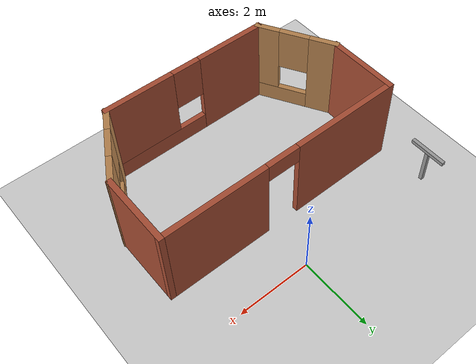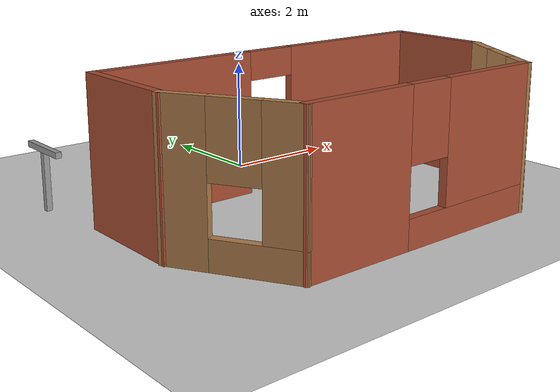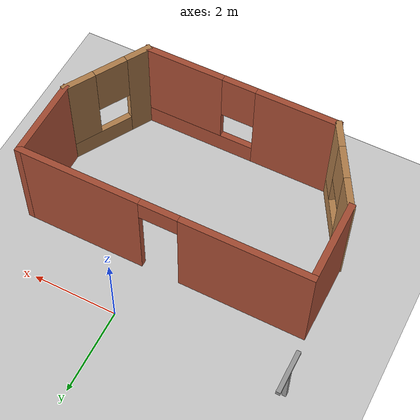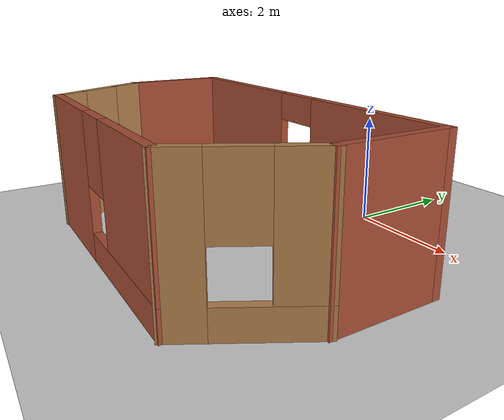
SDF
<sdf version="1.6">
 <world name="default">
  <model name="ground_plane">
   <static>1</static>
   <link name="link">
    <collision name="collision">
     <geometry><plane><normal>0 0 1</normal><size>100 100</size></plane></geometry>
     <surface>
      <contact><collide_bitmask>65535</collide_bitmask></contact>
      <friction><ode><mu>100</mu><mu2>50</mu2></ode></friction>
     </surface>
    </collision>
    <visual name="visual">
     <cast_shadows>0</cast_shadows>
     <geometry><plane><normal>0 0 1</normal><size>100 100</size></plane></geometry>
     <material>
      <script><uri>file://media/materials/scripts/gazebo.material</uri><name>Gazebo/Grey</name></script>
     </material>
    </visual>
   </link>
  </model>
  <model name="house">
   <pose>-0.44 -3.22805 0 0 -0 0</pose>
   <link name="Wall_0">
    <collision name="Wall_0_Collision">
     <geometry><box><size>2 0.15 2.5</size></box></geometry>
     <pose>0 0 1.25 0 -0 0</pose>
    </collision>
    <visual name="Wall_0_Visual">
     <pose>0 0 1.25 0 -0 0</pose>
     <geometry><box><size>2 0.15 2.5</size></box></geometry>
     <material>
      <script><uri>file://media/materials/scripts/gazebo.material</uri><name>Gazebo/Bricks</name></script>
      <ambient>0.435294 0.796078 0.67451 1</ambient>
     </material>
     <meta><layer>0</layer></meta>
    </visual>
    <pose>-3.35 0.923052 0 0 -0 1.5708</pose>
   </link>
   <link name="Wall_10">
    <pose>0 -1.8206 0 0 -0 0</pose>
    <visual name="Wall_10_Visual_0">
     <pose>-1.37779 0 1.25 0 -0 0</pose>
     <geometry><box><size>1.99442 0.15 2.5</size></box></geometry>
     <material>
      <script><uri>file://media/materials/scripts/gazebo.material</uri><name>Gazebo/Bricks</name></script>
      <ambient>0.435294 0.796078 0.67451 1</ambient>
     </material>
     <meta><layer>0</layer></meta>
    </visual>
    <collision name="Wall_10_Collision_0">
     <geometry><box><size>1.99442 0.15 2.5</size></box></geometry>
     <pose>-1.37779 0 1.25 0 -0 0</pose>
    </collision>
    <visual name="Wall_10_Visual_1">
     <pose>0.99721 0 0.25 0 -0 0</pose>
     <geometry><box><size>2.75558 0.15 0.5</size></box></geometry>
     <material>
      <script><uri>file://media/materials/scripts/gazebo.material</uri><name>Gazebo/Bricks</name></script>
      <ambient>0.435294 0.796078 0.67451 1</ambient>
     </material>
     <meta><layer>0</layer></meta>
    </visual>
    <collision name="Wall_10_Collision_1">
     <geometry><box><size>2.75558 0.15 0.5</size></box></geometry>
     <pose>0.99721 0 0.25 0 -0 0</pose>
    </collision>
    <visual name="Wall_10_Visual_2">
     <pose>1.39721 0 1.5 0 -0 0</pose>
     <geometry><box><size>1.95558 0.15 2</size></box></geometry>
     <material>
      <script><uri>file://media/materials/scripts/gazebo.material</uri><name>Gazebo/Bricks</name></script>
      <ambient>0.435294 0.796078 0.67451 1</ambient>
     </material>
     <meta><layer>0</layer></meta>
    </visual>
    <collision name="Wall_10_Collision_2">
     <geometry><box><size>1.95558 0.15 2</size></box></geometry>
     <pose>1.39721 0 1.5 0 -0 0</pose>
    </collision>
    <visual name="Wall_10_Visual_3">
     <pose>0.019419 0 1.9 0 -0 0</pose>
     <geometry><box><size>0.8 0.15 1.2</size></box></geometry>
     <material>
      <script><uri>file://media/materials/scripts/gazebo.material</uri><name>Gazebo/Bricks</name></script>
      <ambient>0.435294 0.796078 0.67451 1</ambient>
     </material>
     <meta><layer>0</layer></meta>
    </visual>
    <collision name="Wall_10_Collision_3">
     <geometry><box><size>0.8 0.15 1.2</size></box></geometry>
     <pose>0.019419 0 1.9 0 -0 0</pose>
    </collision>
   </link>
   <link name="Wall_11">
    <pose>2.825 -0.911274 0 0 -0 1.0472</pose>
    <visual name="Wall_11_Visual_0">
     <pose>-0.798385 0 1.25 0 -0 0</pose>
     <geometry><box><size>0.65323 0.15 2.5</size></box></geometry>
     <material>
      <script><uri>file://media/materials/scripts/gazebo.material</uri><name>Gazebo/Wood</name></script>
      <ambient>1 1 1 1</ambient>
     </material>
     <meta><layer>0</layer></meta>
    </visual>
    <collision name="Wall_11_Collision_0">
     <geometry><box><size>0.65323 0.15 2.5</size></box></geometry>
     <pose>-0.798385 0 1.25 0 -0 0</pose>
    </collision>
    <visual name="Wall_11_Visual_1">
     <pose>0.326615 0 0.25 0 -0 0</pose>
     <geometry><box><size>1.59677 0.15 0.5</size></box></geometry>
     <material>
      <script><uri>file://media/materials/scripts/gazebo.material</uri><name>Gazebo/Wood</name></script>
      <ambient>1 1 1 1</ambient>
     </material>
     <meta><layer>0</layer></meta>
    </visual>
    <collision name="Wall_11_Collision_1">
     <geometry><box><size>1.59677 0.15 0.5</size></box></geometry>
     <pose>0.326615 0 0.25 0 -0 0</pose>
    </collision>
    <visual name="Wall_11_Visual_2">
     <pose>0.726615 0 1.5 0 -0 0</pose>
     <geometry><box><size>0.79677 0.15 2</size></box></geometry>
     <material>
      <script><uri>file://media/materials/scripts/gazebo.material</uri><name>Gazebo/Wood</name></script>
      <ambient>1 1 1 1</ambient>
     </material>
     <meta><layer>0</layer></meta>
    </visual>
    <collision name="Wall_11_Collision_2">
     <geometry><box><size>0.79677 0.15 2</size></box></geometry>
     <pose>0.726615 0 1.5 0 -0 0</pose>
    </collision>
    <visual name="Wall_11_Visual_3">
     <pose>-0.07177 0 1.9 0 -0 0</pose>
     <geometry><box><size>0.8 0.15 1.2</size></box></geometry>
     <material>
      <script><uri>file://media/materials/scripts/gazebo.material</uri><name>Gazebo/Wood</name></script>
      <ambient>1 1 1 1</ambient>
     </material>
     <meta><layer>0</layer></meta>
    </visual>
    <collision name="Wall_11_Collision_3">
     <geometry><box><size>0.8 0.15 1.2</size></box></geometry>
     <pose>-0.07177 0 1.9 0 -0 0</pose>
    </collision>
   </link>
   <link name="Wall_12">
    <collision name="Wall_12_Collision">
     <geometry><box><size>2 0.15 2.5</size></box></geometry>
     <pose>0 0 1.25 0 -0 0</pose>
    </collision>
    <visual name="Wall_12_Visual">
     <pose>0 0 1.25 0 -0 0</pose>
     <geometry><box><size>2 0.15 2.5</size></box></geometry>
     <material>
      <script><uri>file://media/materials/scripts/gazebo.material</uri><name>Gazebo/Bricks</name></script>
      <ambient>0.435294 0.796078 0.67451 1</ambient>
     </material>
     <meta><layer>0</layer></meta>
    </visual>
    <pose>3.35 0.923052 0 0 -0 1.5708</pose>
   </link>
   <link name="Wall_13">
    <pose>0 1.84805 0 0 -0 3.14159</pose>
    <visual name="Wall_13_Visual_0">
     <pose>-1.95871 0 1.25 0 -0 0</pose>
     <geometry><box><size>2.93258 0.15 2.5</size></box></geometry>
     <material>
      <script><uri>file://media/materials/scripts/gazebo.material</uri><name>Gazebo/Bricks</name></script>
      <ambient>1 1 1 1</ambient>
     </material>
     <meta><layer>0</layer></meta>
    </visual>
    <collision name="Wall_13_Collision_0">
     <geometry><box><size>2.93258 0.15 2.5</size></box></geometry>
     <pose>-1.95871 0 1.25 0 -0 0</pose>
    </collision>
    <visual name="Wall_13_Visual_1">
     <pose>1.91629 0 1.25 0 -0 0</pose>
     <geometry><box><size>3.01742 0.15 2.5</size></box></geometry>
     <material>
      <script><uri>file://media/materials/scripts/gazebo.material</uri><name>Gazebo/Bricks</name></script>
      <ambient>1 1 1 1</ambient>
     </material>
     <meta><layer>0</layer></meta>
    </visual>
    <collision name="Wall_13_Collision_1">
     <geometry><box><size>3.01742 0.15 2.5</size></box></geometry>
     <pose>1.91629 0 1.25 0 -0 0</pose>
    </collision>
    <visual name="Wall_13_Visual_2">
     <pose>-0.042419 0 2.25 0 -0 0</pose>
     <geometry><box><size>0.9 0.15 0.5</size></box></geometry>
     <material>
      <script><uri>file://media/materials/scripts/gazebo.material</uri><name>Gazebo/Bricks</name></script>
      <ambient>1 1 1 1</ambient>
     </material>
     <meta><layer>0</layer></meta>
    </visual>
    <collision name="Wall_13_Collision_2">
     <geometry><box><size>0.9 0.15 0.5</size></box></geometry>
     <pose>-0.042419 0 2.25 0 -0 0</pose>
    </collision>
   </link>
   <link name="Wall_9">
    <pose>-2.825 -0.911274 0 0 0 -1.0472</pose>
    <visual name="Wall_9_Visual_0">
     <pose>-0.736824 0 1.25 0 -0 0</pose>
     <geometry><box><size>0.776352 0.15 2.5</size></box></geometry>
     <material>
      <script><uri>file://media/materials/scripts/gazebo.material</uri><name>Gazebo/Wood</name></script>
      <ambient>1 1 1 1</ambient>
     </material>
     <meta><layer>0</layer></meta>
    </visual>
    <collision name="Wall_9_Collision_0">
     <geometry><box><size>0.776352 0.15 2.5</size></box></geometry>
     <pose>-0.736824 0 1.25 0 -0 0</pose>
    </collision>
    <visual name="Wall_9_Visual_1">
     <pose>0.388176 0 0.25 0 -0 0</pose>
     <geometry><box><size>1.47365 0.15 0.5</size></box></geometry>
     <material>
      <script><uri>file://media/materials/scripts/gazebo.material</uri><name>Gazebo/Wood</name></script>
      <ambient>1 1 1 1</ambient>
     </material>
     <meta><layer>0</layer></meta>
    </visual>
    <collision name="Wall_9_Collision_1">
     <geometry><box><size>1.47365 0.15 0.5</size></box></geometry>
     <pose>0.388176 0 0.25 0 -0 0</pose>
    </collision>
    <visual name="Wall_9_Visual_2">
     <pose>0.788176 0 1.5 0 -0 0</pose>
     <geometry><box><size>0.673648 0.15 2</size></box></geometry>
     <material>
      <script><uri>file://media/materials/scripts/gazebo.material</uri><name>Gazebo/Wood</name></script>
      <ambient>1 1 1 1</ambient>
     </material>
     <meta><layer>0</layer></meta>
    </visual>
    <collision name="Wall_9_Collision_2">
     <geometry><box><size>0.673648 0.15 2</size></box></geometry>
     <pose>0.788176 0 1.5 0 -0 0</pose>
    </collision>
    <visual name="Wall_9_Visual_3">
     <pose>0.051352 0 1.9 0 -0 0</pose>
     <geometry><box><size>0.8 0.15 1.2</size></box></geometry>
     <material>
      <script><uri>file://media/materials/scripts/gazebo.material</uri><name>Gazebo/Wood</name></script>
      <ambient>1 1 1 1</ambient>
     </material>
     <meta><layer>0</layer></meta>
    </visual>
    <collision name="Wall_9_Collision_3">
     <geometry><box><size>0.8 0.15 1.2</size></box></geometry>
     <pose>0.051352 0 1.9 0 -0 0</pose>
    </collision>
   </link>
   <static>1</static>
  </model>
  <model name="anotherrone_clone">
   <link name="link_0_clone">
    <pose>1.00397 -1.20326 1.05 1.57079 -0 0</pose>
    <inertial>
     <mass>1</mass>
     <inertia>
      <ixx>0.166667</ixx>
      <ixy>0</ixy>
      <ixz>0</ixz>
      <iyy>0.166667</iyy>
      <iyz>0</iyz>
      <izz>0.166667</izz>
     </inertia>
    </inertial>
    <visual name="visual">
     <geometry><box><size>0.1 0.1 1</size></box></geometry>
     <material>
      <lighting>1</lighting>
      <script><uri>file://media/materials/scripts/gazebo.material</uri><name>Gazebo/Grey</name></script>
      <shader type="pixel"><normal_map>__default__</normal_map></shader>
      <ambient>0.3 0.3 0.3 1</ambient>
      <diffuse>0.7 0.7 0.7 1</diffuse>
      <specular>0.01 0.01 0.01 1</specular>
      <emissive>0 0 0 1</emissive>
     </material>
    </visual>
    <collision name="collision">
     <geometry><box><size>0.1 0.1 1</size></box></geometry>
     <surface>
      <friction>
       <ode><mu>1</mu><mu2>1</mu2><fdir1>0 0 0</fdir1><slip1>0</slip1><slip2>0</slip2></ode>
       <torsional>
        <coefficient>1</coefficient>
        <patch_radius>0</patch_radius>
        <surface_radius>0</surface_radius>
        <use_patch_radius>1</use_patch_radius>
        <ode><slip>0</slip></ode>
       </torsional>
      </friction>
      <bounce><restitution_coefficient>0</restitution_coefficient><threshold>1e+06</threshold></bounce>
      <contact>
       <collide_without_contact>0</collide_without_contact>
       <collide_without_contact_bitmask>1</collide_without_contact_bitmask>
       <collide_bitmask>1</collide_bitmask>
       <ode>
        <soft_cfm>0</soft_cfm>
        <soft_erp>0.2</soft_erp>
        <kp>1e+13</kp>
        <kd>1</kd>
        <max_vel>0.01</max_vel>
        <min_depth>0</min_depth>
       </ode>
       <bullet>
        <split_impulse>1</split_impulse>
        <split_impulse_penetration_threshold>-0.01</split_impulse_penetration_threshold>
        <soft_cfm>0</soft_cfm>
        <soft_erp>0.2</soft_erp>
        <kp>1e+13</kp>
        <kd>1</kd>
       </bullet>
      </contact>
     </surface>
    </collision>
   </link>
   <link name="link_0_clone_clone">
    <pose>1.00397 -1.20326 0.499999 0 -0 0</pose>
    <inertial>
     <mass>1</mass>
     <inertia>
      <ixx>0.166667</ixx>
      <ixy>0</ixy>
      <ixz>0</ixz>
      <iyy>0.166667</iyy>
      <iyz>0</iyz>
      <izz>0.166667</izz>
     </inertia>
    </inertial>
    <visual name="visual">
     <geometry><box><size>0.1 0.1 1</size></box></geometry>
     <material>
      <lighting>1</lighting>
      <script><uri>file://media/materials/scripts/gazebo.material</uri><name>Gazebo/Grey</name></script>
      <shader type="pixel"><normal_map>__default__</normal_map></shader>
      <ambient>0.3 0.3 0.3 1</ambient>
      <diffuse>0.7 0.7 0.7 1</diffuse>
      <specular>0.01 0.01 0.01 1</specular>
      <emissive>0 0 0 1</emissive>
     </material>
    </visual>
    <collision name="collision">
     <geometry><box><size>0.1 0.1 1</size></box></geometry>
     <surface>
      <friction>
       <ode><mu>1</mu><mu2>1</mu2><fdir1>0 0 0</fdir1><slip1>0</slip1><slip2>0</slip2></ode>
       <torsional>
        <coefficient>1</coefficient>
        <patch_radius>0</patch_radius>
        <surface_radius>0</surface_radius>
        <use_patch_radius>1</use_patch_radius>
        <ode><slip>0</slip></ode>
       </torsional>
      </friction>
      <bounce><restitution_coefficient>0</restitution_coefficient><threshold>1e+06</threshold></bounce>
      <contact>
       <collide_without_contact>0</collide_without_contact>
       <collide_without_contact_bitmask>1</collide_without_contact_bitmask>
       <collide_bitmask>1</collide_bitmask>
       <ode>
        <soft_cfm>0</soft_cfm>
        <soft_erp>0.2</soft_erp>
        <kp>1e+13</kp>
        <kd>1</kd>
        <max_vel>0.01</max_vel>
        <min_depth>0</min_depth>
       </ode>
       <bullet>
        <split_impulse>1</split_impulse>
        <split_impulse_penetration_threshold>-0.01</split_impulse_penetration_threshold>
        <soft_cfm>0</soft_cfm>
        <soft_erp>0.2</soft_erp>
        <kp>1e+13</kp>
        <kd>1</kd>
       </bullet>
      </contact>
     </surface>
    </collision>
   </link>
   <joint name="link_0_clone_clone_JOINT_0" type="revolute">
    <parent>link_0_clone_clone</parent>
    <child>link_0_clone</child>
    <axis>
     <xyz>0 -1 0</xyz>
     <use_parent_model_frame>0</use_parent_model_frame>
     <limit>
      <lower>-1.79769e+308</lower>
      <upper>1.79769e+308</upper>
      <effort>-1</effort>
      <velocity>-1</velocity>
     </limit>
     <dynamics>
      <spring_reference>0</spring_reference>
      <spring_stiffness>0</spring_stiffness>
      <damping>0</damping>
     </dynamics>
    </axis>
    <physics>
     <ode><limit><cfm>0</cfm><erp>0.2</erp></limit><suspension><cfm>0</cfm><erp>0.2</erp></suspension></ode>
    </physics>
   </joint>
   <static>0</static>
   <pose>-5.00456 1.19805 3.4e-05 1.3e-05 1.6e-05 1.1e-05</pose>
  </model>
 </world>
</sdf>
